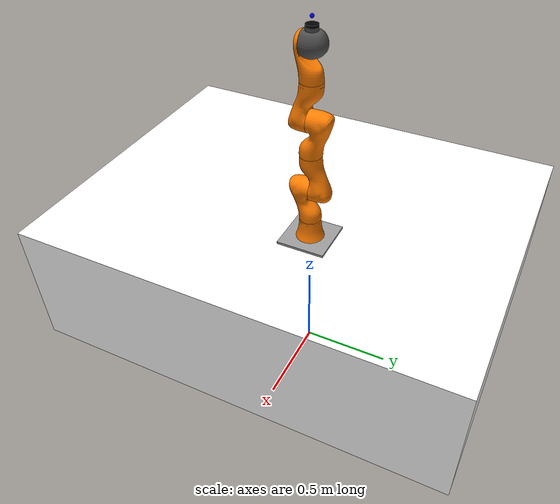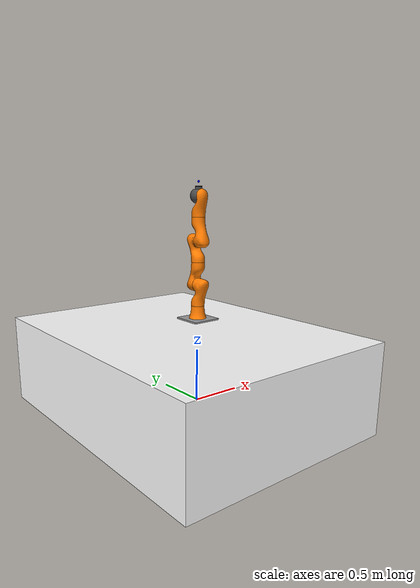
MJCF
<mujoco model="lwr">
    <actuator>
        <!-- Physical limits of the actuator. -->
        <!-- Values taken from kuka_lbr_iiwa_brochure_en.pdf (see website) -->
        <motor ctrllimited="true" ctrlrange="-176.0 176.0" joint="joint_1" name="torq_j1"/>
        <motor ctrllimited="true" ctrlrange="-176.0 176.0" joint="joint_2" name="torq_j2"/>
        <motor ctrllimited="true" ctrlrange="-110.0 110.0" joint="joint_3" name="torq_j3"/>
        <motor ctrllimited="true" ctrlrange="-110.0 110.0" joint="joint_4" name="torq_j4"/>
        <motor ctrllimited="true" ctrlrange="-110.0 110.0" joint="joint_5" name="torq_j5"/>
        <motor ctrllimited="true" ctrlrange="-40.0 40.0" joint="joint_6" name="torq_j6"/>
        <motor ctrllimited="true" ctrlrange="-40.0 40.0" joint="joint_7" name="torq_j7"/>
    </actuator>
    <asset>
        <mesh name="arm_base_convex" file="meshes/arm_base_convex.stl" />
        <mesh name="arm_segment_a_convex" file="meshes/arm_segment_a_convex.stl" />
        <mesh name="arm_segment_b_convex" file="meshes/arm_segment_b_convex.stl" />
        <mesh name="arm_segment_last" file="meshes/arm_segment_last.stl" />
        <mesh name="arm_wrist_convex" file="meshes/arm_wrist_convex.stl" />

        <mesh name="arm_base" file="meshes/arm_base.stl" />
        <mesh name="arm_segment_a" file="meshes/arm_segment_a.stl" />
        <mesh name="arm_segment_b" file="meshes/arm_segment_b.stl" />
        <mesh name="arm_wrist" file="meshes/arm_wrist.stl" />
    </asset>
    <worldbody>
        <body name="base" pos="0 0 0">
                <!-- robot view -->
                <camera mode="fixed" name="robotview" pos="1.0 0 1.5" quat="0.653 0.271 0.271 0.653"/>
                <inertial diaginertia="0 0 0" mass="0" pos="0 0 0"/>
                <!-- mount attached here -->
                <geom size="1.3 1 0.4" pos="-0.31 -0.19 0.4" quat="0.707107 0 0 -0.707107" type="box" rgba="1 1 1 1" />
                <geom size="0.1375 0.1375 0.007" pos="0 0 0.8071" type="box" rgba="0.6 0.6 0.6 1" />
                <geom pos="0 0 0.8142" type="mesh" rgba="1 0.487 0 1" conaffinity="0" group="1" name="base_visual"  mesh="arm_base" />

                <body name="lwr_arm_1_link" pos="0 0 0.9242">
                    <inertial pos="0 -0.06 0.13" mass="2" diaginertia="0.1 0.1 0.1" />
                    <joint name="joint_1" pos="0 0 0" axis="0 0 1" limited="true" range="-2.96706 2.96706" damping="0.1" />
                    <geom type="mesh"  conaffinity="0" group="1" rgba="1 0.487 0 1" name="link_1_visual" mesh="arm_segment_a" />

                    <body name="lwr_arm_2_link" pos="0 0 0.2" quat="0.707107 -0.707107 0 0">
                        <inertial pos="0 0.06 0.07" mass="2" diaginertia="0.1 0.1 0.1" />
                        <joint name="joint_2" pos="0 0 0" axis="0 0 1" limited="true" range="-2.0944 2.0944" damping="0.1" frictionloss="10" />
                        <geom pos="0 -0.2 0" quat="0.707107 -0.707107 0 0" type="mesh" conaffinity="0" group="1" rgba="1 0.487 0 1" mesh="arm_segment_b" name="link_2_visual"/>

                        <body name="lwr_arm_3_link" pos="0 -0.2 0" quat="0.707107 0.707107 0 0">
                            <inertial pos="0 0.06 0.13" mass="2" diaginertia="0.1 0.1 0.1" />
                            <joint name="joint_3" pos="0 0 0" axis="0 0 1" limited="true" range="-2.96706 2.96706" damping="0.1" />
                            <geom quat="0 0 0 1" type="mesh" rgba="1 0.487 0 1" conaffinity="0" group="1" mesh="arm_segment_a" name="link_3_visual"/>

                            <body name="lwr_arm_4_link" pos="0 0 0.2" quat="0.707107 0.707107 0 0">
                                <inertial pos="0 -0.06 0.07" mass="2" diaginertia="0.1 0.1 0.1" />
                                <joint name="joint_4" pos="0 0 0" axis="0 0 1" limited="true" range="-2.0944 2.0944" damping="0.1" />
                                <geom pos="0 0.2 0" quat="0 0 0.707107 -0.707107" type="mesh" rgba="1 0.487 0 1"  conaffinity="0" group="1" mesh="arm_segment_b" name="link_4_visual"/>

                                <body name="lwr_arm_5_link" pos="0 0.2 0" quat="0.707107 -0.707107 0 0">
                                    <inertial pos="0 0 0.124" mass="2" diaginertia="0.1 0.1 0.1" />
                                    <joint name="joint_5" pos="0 0 0" axis="0 0 1" limited="true" range="-2.96706 2.96706" damping="0.1" />
                                    <geom type="mesh" rgba="1 0.487 0 1" conaffinity="0" group="1" mesh="arm_segment_last" name="link_5_visual"/>

                                    <body name="lwr_arm_6_link" pos="0 0 0.19" quat="0.707107 -0.707107 0 0">
                                        <inertial pos="0 0 0.0625" mass="0.2" diaginertia="0.1 0.1 0.1" />
                                        <joint name="joint_6" pos="0 0 0" axis="0 0 1" limited="true" range="-2.0944 2.0944" damping="0.1" />
                                        <geom quat="0.707107 0.707107 0 0" type="mesh" rgba="0.3 0.3 0.3 1" conaffinity="0" group="1" mesh="arm_wrist"  name="link_6_visual" />

                                        <body name="lwr_arm_7_link" pos="0 -0.078 0" quat="0.707107 0.707107 0 0">
                                            <inertial pos="0 0 0.002" mass="0.25" diaginertia="2 2 2" />
                                            <joint name="joint_7" pos="0 0 0" axis="0 0 1" limited="true" range="-2.96706 2.96706" damping="0.1" />
                                            <geom size="0.0315 0.01" pos="0 0 -0.01" quat="0.92388 0 0 -0.382683" type="cylinder" rgba="0.3 0.3 0.3 1" conaffinity="0" group="1"/>
                                            <geom size="0.0315 0.005" pos="0 0 0.005" type="cylinder" rgba="0 0 0 1" />

                                            <body name="right_hand" pos="0 0 0.044" quat="0 0 0 1">
                                                <!-- This sites were added for visualization. They are all standardized between models-->
                                                <!-- Position mimics the gripper attachment point (right_hand) -->
                                                <!--  Y-axis should be perpendicular to grasping motion, and Z-axis should point out of the robot eef -->
                                                <site name="ee" pos="0 0 0" size="0.01 0.01 0.01" rgba="0 0 1 1" type="sphere" group="1"/>
                                                <site name="ee_x" pos="0 0 0" size="0.005 .1"  quat="0.707105 0.707108 0 0 " rgba="1 0 0 0" type="cylinder" group="1"/>
                                                <site name="ee_z" pos="0 0 0" size="0.005 .1" quat="0.707105 0 0 0.707108" rgba="0 0 1 0" type="cylinder" group="1"/>
                                                <site name="ee_y" pos="0 0 0" size="0.005 .1" quat="0.707105 0 0.707108 0 " rgba="0 1 0 0" type="cylinder" group="1"/>
                                                <!-- This camera points out from the eef. -->
                                                <camera mode="fixed" name="eye_in_hand" pos="0.05 0 0" quat="0 0.707108 0.707108 0" fovy="75"/>
                                                <!-- to add gripper -->
                                        </body>
                                    </body>
                                </body>
                            </body>
                        </body>
                    </body>
                </body>
            </body>
        </body>
    </worldbody>
</mujoco>
